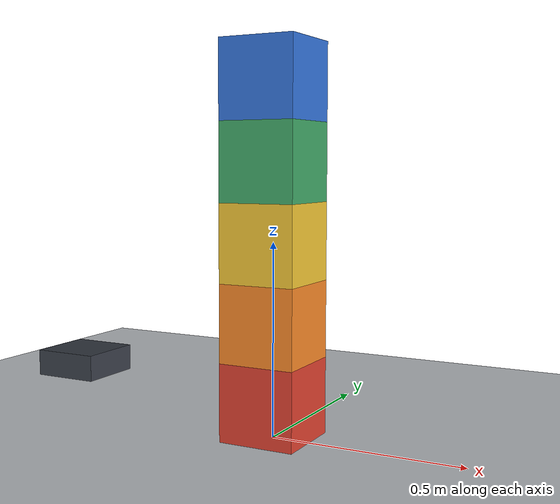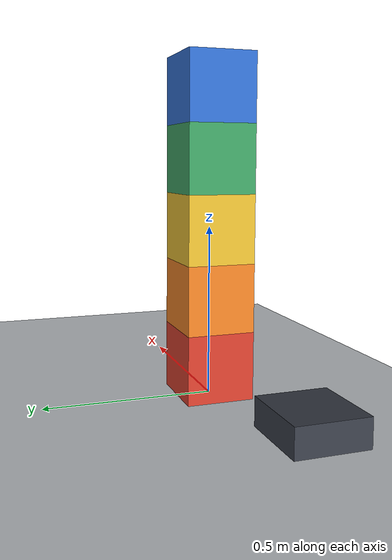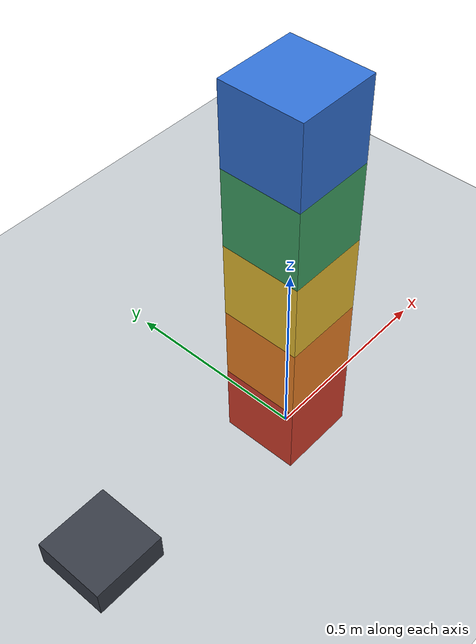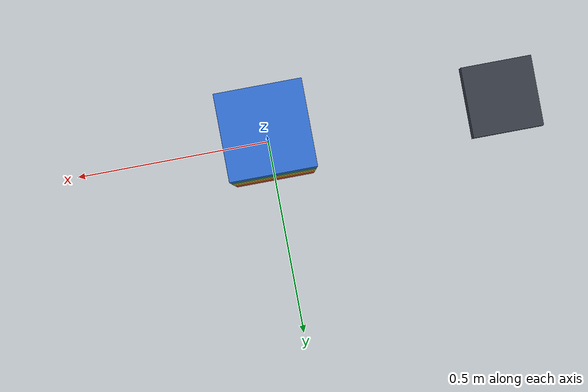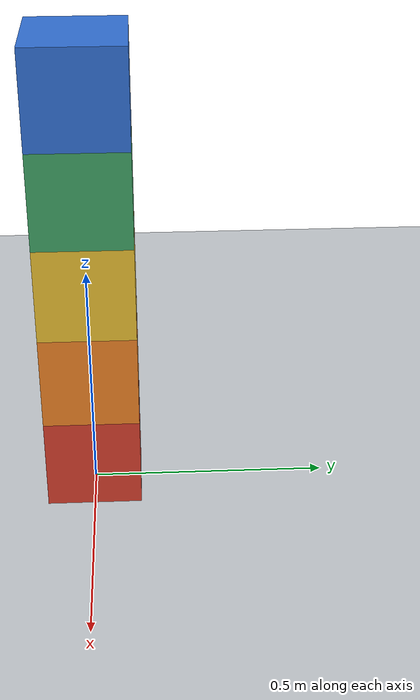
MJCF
<mujoco model="five_blocks_topple">
  <compiler angle="radian"/>
  <option timestep="0.002" gravity="0 0 -9.81" integrator="implicitfast" solver="Newton" iterations="100" cone="elliptic"/>
  <size njmax="1000" nconmax="200"/>

  <visual>
    <headlight ambient="0.35 0.35 0.35" diffuse="0.65 0.65 0.65" specular="0.2 0.2 0.2"/>
    <map znear="0.01"/>
  </visual>

  <worldbody>
    <light name="main_light" pos="-3 -4 6" dir="0.3 0.4 -1" directional="true"/>
    <camera name="overview" pos="3 -4 2.4" xyaxes="0.8 0.6 0 -0.216 0.288 0.933"/>

    <geom name="floor" type="plane" pos="0 0 0" size="4 4 0.1" friction="0.7 0.005 0.0001" condim="3" rgba="0.78 0.80 0.82 1"/>

    <body name="block1" pos="0 0 0.1">
      <freejoint name="block1_free"/>
      <geom name="block1_geom" type="box" size="0.1 0.1 0.1" mass="1" friction="0.7 0.005 0.0001" condim="3" solref="0.008 1" solimp="0.95 0.99 0.001" rgba="0.85 0.25 0.18 1"/>
    </body>

    <body name="block2" pos="0 0 0.3">
      <freejoint name="block2_free"/>
      <geom name="block2_geom" type="box" size="0.1 0.1 0.1" mass="1" friction="0.7 0.005 0.0001" condim="3" solref="0.008 1" solimp="0.95 0.99 0.001" rgba="0.95 0.52 0.15 1"/>
    </body>

    <body name="block3" pos="0 0 0.5">
      <freejoint name="block3_free"/>
      <geom name="block3_geom" type="box" size="0.1 0.1 0.1" mass="1" friction="0.7 0.005 0.0001" condim="3" solref="0.008 1" solimp="0.95 0.99 0.001" rgba="0.93 0.76 0.20 1"/>
    </body>

    <body name="block4" pos="0 0 0.7">
      <freejoint name="block4_free"/>
      <geom name="block4_geom" type="box" size="0.1 0.1 0.1" mass="1" friction="0.7 0.005 0.0001" condim="3" solref="0.008 1" solimp="0.95 0.99 0.001" rgba="0.25 0.65 0.40 1"/>
    </body>

    <body name="block5" pos="0 0 0.9">
      <freejoint name="block5_free"/>
      <geom name="block5_geom" type="box" size="0.1 0.1 0.1" mass="1" friction="0.7 0.005 0.0001" condim="3" solref="0.008 1" solimp="0.95 0.99 0.001" rgba="0.20 0.45 0.85 1"/>
    </body>

    <!-- The initial gap gives the stack about 0.3 seconds to stand before impact. -->
    <!-- The ram contacts only the bottom block and pushes it out from under the stack. -->
    <body name="pusher" pos="-0.6 0 0.14">
      <joint name="pusher_slide" type="slide" axis="1 0 0" limited="true" range="0 0.85" damping="0.5" armature="0.02"/>
      <geom name="pusher_geom" type="box" size="0.09 0.09 0.035" mass="5" friction="0.5 0.005 0.0001" condim="3" solref="0.008 1" solimp="0.95 0.99 0.001" rgba="0.22 0.24 0.28 1"/>
    </body>
  </worldbody>

  <actuator>
    <motor name="push_motor" joint="pusher_slide" gear="1" ctrllimited="true" ctrlrange="0 45"/>
  </actuator>

  <keyframe>
    <key name="start" ctrl="45"/>
  </keyframe>
</mujoco>
